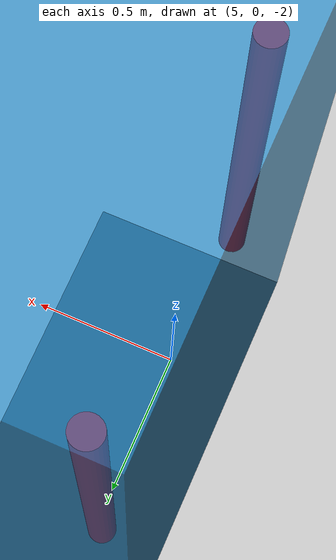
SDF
<?xml version="1.0" ?>
<sdf version="1.8">
  <world name="sauvc_pool">

    <plugin
      filename="gz-sim-sensors-system"
      name="gz::sim::systems::Sensors">
      <render_engine>ogre2</render_engine>
    </plugin>

    <plugin filename="gz-sim-physics-system" name="gz::sim::systems::Physics"></plugin>
    <plugin filename="gz-sim-user-commands-system" name="gz::sim::systems::UserCommands"></plugin>
    <plugin filename="gz-sim-scene-broadcaster-system" name="gz::sim::systems::SceneBroadcaster"></plugin>

    <plugin
      filename="gz-sim-buoyancy-system"
      name="gz::sim::systems::Buoyancy">
      <uniform_fluid_density>1000</uniform_fluid_density>
    </plugin>

    <physics name="1ms" type="ignored">
      <max_step_size>0.001</max_step_size>
      <real_time_factor>1.0</real_time_factor>
    </physics>

    <light type="directional" name="sun">
      <cast_shadows>true</cast_shadows>
      <pose>0 0 10 0 0 0</pose>
      <diffuse>0.8 0.8 0.8 1</diffuse>
      <specular>0.2 0.2 0.2 1</specular>
      <direction>-0.5 0.1 -0.9</direction>
    </light>

    <model name="ground_plane">
      <static>true</static>
      <pose>0 0 -3.0 0 0 0</pose>
      <link name="link">
        <collision name="collision"><geometry><plane><normal>0 0 1</normal><size>100 100</size></plane></geometry></collision>
        <visual name="visual">
          <geometry><plane><normal>0 0 1</normal><size>100 100</size></plane></geometry>
          <material><ambient>0.3 0.3 0.3 1</ambient><diffuse>0.3 0.3 0.3 1</diffuse></material>
        </visual>
      </link>
    </model>

    <model name="water_visual">
      <static>true</static>
      <pose>0 0 -1.5 0 0 0</pose>
      <link name="link">
        <visual name="visual">
          <geometry><box><size>20 20 3</size></box></geometry>
          <material>
            <ambient>0 0.5 0.8 0.6</ambient>
            <diffuse>0 0.5 0.8 0.6</diffuse>
            <specular>0.1 0.1 0.1 0.6</specular>
          </material>
        </visual>
      </link>
    </model>

    <model name="red_gate">
      <static>true</static>
      <pose>5 0 -1.5 0 0 0</pose>
      <link name="left_post">
        <pose>0 0.6 0 0 0 0</pose>
        <visual name="visual">
          <geometry><cylinder><radius>0.05</radius><length>1.5</length></cylinder></geometry>
          <material><ambient>1 0 0 1</ambient><diffuse>1 0 0 1</diffuse></material>
        </visual>
        <collision name="collision">
           <geometry><cylinder><radius>0.05</radius><length>1.5</length></cylinder></geometry>
        </collision>
      </link>
      <link name="right_post">
        <pose>0 -0.6 0 0 0 0</pose>
        <visual name="visual">
          <geometry><cylinder><radius>0.05</radius><length>1.5</length></cylinder></geometry>
          <material><ambient>1 0 0 1</ambient><diffuse>1 0 0 1</diffuse></material>
        </visual>
        <collision name="collision">
           <geometry><cylinder><radius>0.05</radius><length>1.5</length></cylinder></geometry>
        </collision>
      </link>
    </model>

  </world>
</sdf>
